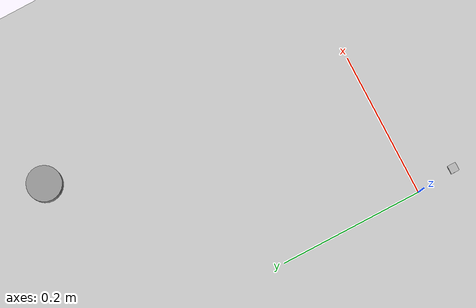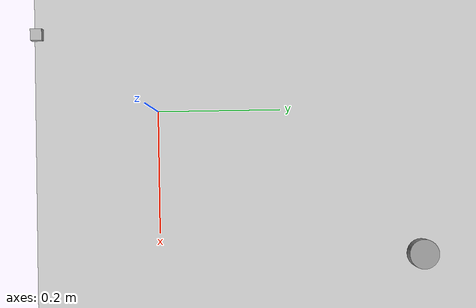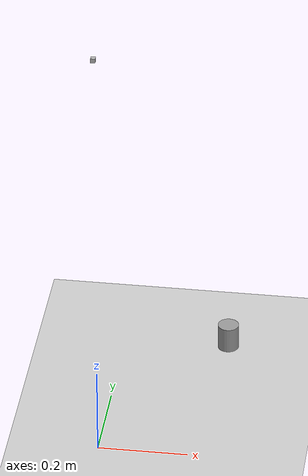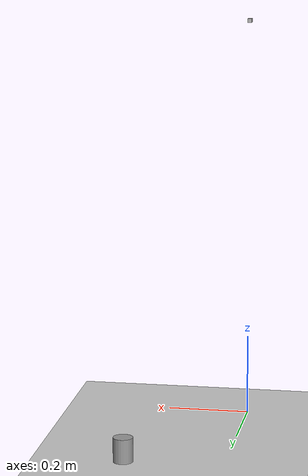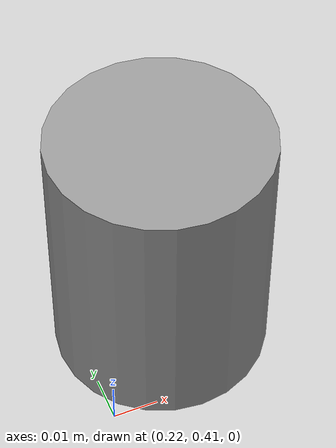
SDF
<sdf version="1.7">
 <world name="default">
  <light name="sun" type="directional">
   <pose>0 0 10 0 -0 0</pose>
   <diffuse>0.8 0.8 0.8 1</diffuse>
   <specular>0.2 0.2 0.2 1</specular>
   <attenuation>
    <range>1000</range>
    <constant>0.9</constant>
    <linear>0.01</linear>
    <quadratic>0.001</quadratic>
   </attenuation>
   <direction>-0.5 0.1 -0.9</direction>
   <spot><inner_angle>0</inner_angle><outer_angle>0</outer_angle><falloff>0</falloff></spot>
  </light>
  <model name="ground_plane">
   <static>1</static>
   <link name="link">
    <collision name="collision">
     <geometry><plane><normal>0 0 1</normal><size>100 100</size></plane></geometry>
     <surface><friction><ode><mu>100</mu><mu2>50</mu2></ode></friction></surface>
    </collision>
    <visual name="visual">
     <cast_shadows>0</cast_shadows>
     <geometry><plane><normal>0 0 1</normal><size>100 100</size></plane></geometry>
     <material>
      <script><uri>file://media/materials/scripts/gazebo.material</uri><name>Gazebo/Grey</name></script>
     </material>
    </visual>
   </link>
  </model>
  <gravity>0 0 -9.8</gravity>
  <magnetic_field>6e-06 2.3e-05 -4.2e-05</magnetic_field>
  <atmosphere type="adiabatic"/>
  <physics type="ode">
   <max_step_size>0.001</max_step_size>
   <real_time_factor>1</real_time_factor>
   <real_time_update_rate>1000</real_time_update_rate>
  </physics>
  <scene><ambient>0.4 0.4 0.4 1</ambient><background>0.7 0.7 0.7 1</background><shadows>1</shadows></scene>
  <spherical_coordinates>
   <surface_model>EARTH_WGS84</surface_model>
   <latitude_deg>0</latitude_deg>
   <longitude_deg>0</longitude_deg>
   <elevation>0</elevation>
   <heading_deg>0</heading_deg>
  </spherical_coordinates>
  <model name="camera">
   <pose>0 0 1 0 1.57075 0</pose>
   <link name="link">
    <visual name="visual"><geometry><box><size>0.01 0.01 0.01</size></box></geometry></visual>
    <sensor name="camera" type="camera">
     <camera name="__default__">
      <horizontal_fov>1.78</horizontal_fov>
      <image><width>1920</width><height>1280</height></image>
      <clip><near>0.1</near><far>100</far></clip>
     </camera>
     <always_on>1</always_on>
     <update_rate>30</update_rate>
     <visualize>0</visualize>
     <plugin name="camera_plugin" filename="libgazebo_ros_camera.so">
      <robotNamespace>cam</robotNamespace>
      <alwaysOn>1</alwaysOn>
      <imageTopicName>image_raw</imageTopicName>
      <cameraInfoTopicName>camera_info</cameraInfoTopicName>
      <updateRate>30.0</updateRate>
      <cameraName>rgb</cameraName>
      <frameName>/robot_camera_link</frameName>
      <CxPrime>320.5</CxPrime>
      <Cx>320.5</Cx>
      <Cy>240.5</Cy>
      <hackBaseline>0</hackBaseline>
      <focalLength>777.580124</focalLength>
      <distortionK1>0.0</distortionK1>
      <distortionK2>0.0</distortionK2>
      <distortionK3>0.0</distortionK3>
      <distortionT1>0.0</distortionT1>
      <distortionT2>0.0</distortionT2>
     </plugin>
    </sensor>
   </link>
   <static>1</static>
  </model>
  <model name="unit_cylinder">
   <link name="link">
    <inertial>
     <mass>0.005</mass>
     <inertia><ixx>0.145833</ixx><ixy>0</ixy><ixz>0</ixz><iyy>0.145833</iyy><iyz>0</iyz><izz>0.125</izz></inertia>
    </inertial>
    <visual name="visual">
     <geometry><cylinder><radius>0.0239683</radius><length>0.060047</length></cylinder></geometry>
     <material>
      <script><name>Gazebo/Grey</name><uri>file://media/materials/scripts/gazebo.material</uri></script>
      <shader type="pixel"><normal_map>__default__</normal_map></shader>
      <ambient>1 1 1 0</ambient>
      <diffuse>1 1 1 1</diffuse>
      <specular>0.01 0.01 0.01 1</specular>
      <emissive>1 1 1 1</emissive>
     </material>
    </visual>
    <collision name="collision">
     <geometry><cylinder><radius>0.023968</radius><length>0.060047</length></cylinder></geometry>
     <surface>
      <friction>
       <ode><mu>1</mu><mu2>1</mu2><fdir1>0 0 0</fdir1><slip1>0</slip1><slip2>0</slip2></ode>
       <torsional>
        <coefficient>1</coefficient>
        <patch_radius>0</patch_radius>
        <surface_radius>0</surface_radius>
        <use_patch_radius>1</use_patch_radius>
        <ode><slip>0</slip></ode>
       </torsional>
      </friction>
      <bounce><restitution_coefficient>0</restitution_coefficient><threshold>1e+06</threshold></bounce>
      <contact>
       <collide_without_contact>0</collide_without_contact>
       <collide_without_contact_bitmask>1</collide_without_contact_bitmask>
       <collide_bitmask>1</collide_bitmask>
       <ode>
        <soft_cfm>0</soft_cfm>
        <soft_erp>0.2</soft_erp>
        <kp>1e+13</kp>
        <kd>1</kd>
        <max_vel>0.01</max_vel>
        <min_depth>0</min_depth>
       </ode>
       <bullet>
        <split_impulse>1</split_impulse>
        <split_impulse_penetration_threshold>-0.01</split_impulse_penetration_threshold>
        <soft_cfm>0</soft_cfm>
        <soft_erp>0.2</soft_erp>
        <kp>1e+13</kp>
        <kd>1</kd>
       </bullet>
      </contact>
     </surface>
    </collision>
   </link>
   <static>0</static>
   <pose>0.238985 0.429647 0.030023 -2e-06 1e-06 -2e-06</pose>
  </model>
 </world>
</sdf>
